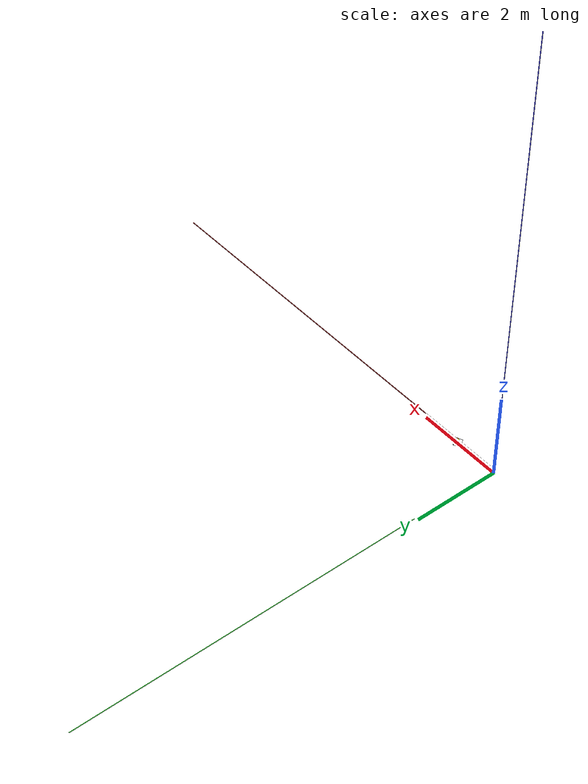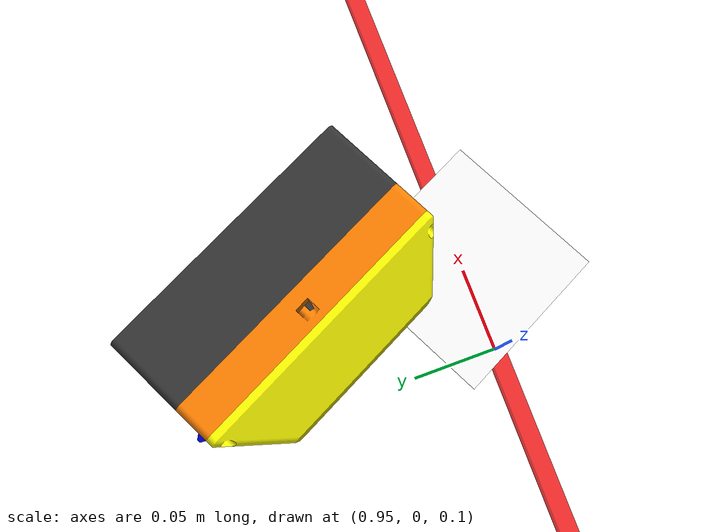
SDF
<sdf version="1.9">
 <world name="vtol_runway">
  <physics name="1ms" type="ignore">
   <max_step_size>0.001</max_step_size>
   <real_time_factor>1.0</real_time_factor>
  </physics>
  <plugin filename="gz-sim-physics-system" name="gz::sim::systems::Physics"/>
  <plugin filename="gz-sim-sensors-system" name="gz::sim::systems::Sensors">
   <render_engine>ogre2</render_engine>
  </plugin>
  <plugin filename="gz-sim-user-commands-system" name="gz::sim::systems::UserCommands"/>
  <plugin filename="gz-sim-scene-broadcaster-system" name="gz::sim::systems::SceneBroadcaster"/>
  <plugin filename="gz-sim-imu-system" name="gz::sim::systems::Imu"/>
  <plugin filename="gz-sim-navsat-system" name="gz::sim::systems::NavSat"/>
  <scene><ambient>1.0 1.0 1.0</ambient><background>0.8 0.8 0.8</background></scene>
  <spherical_coordinates>
   <latitude_deg>-35.363262</latitude_deg>
   <longitude_deg>149.165237</longitude_deg>
   <elevation>584</elevation>
   <heading_deg>0</heading_deg>
   <surface_model>EARTH_WGS84</surface_model>
  </spherical_coordinates>
  <light type="directional" name="sun">
   <pose>0 0 10 0 0 0</pose>
   <diffuse>0.8 0.8 0.8 1</diffuse>
   <specular>0.8 0.8 0.8 1</specular>
   <attenuation>
    <range>1000</range>
    <constant>0.9</constant>
    <linear>0.01</linear>
    <quadratic>0.001</quadratic>
   </attenuation>
   <direction>-0.5 0.1 -0.9</direction>
  </light>
  <model name="axes">
   <static>1</static>
   <link name="link">
    <visual name="r">
     <cast_shadows>0</cast_shadows>
     <pose>5 0 0.1 0 0 0</pose>
     <geometry><box><size>10 0.01 0.01</size></box></geometry>
     <material>
      <ambient>1 0 0 0.8</ambient>
      <diffuse>1 0 0 0.8</diffuse>
      <emissive>1 0 0 0.8</emissive>
      <specular>0.5 0.5 0.5 0.8</specular>
     </material>
    </visual>
    <visual name="g">
     <cast_shadows>0</cast_shadows>
     <pose>0 5 0.1 0 0 0</pose>
     <geometry><box><size>0.01 10 0.01</size></box></geometry>
     <material>
      <ambient>0 1 0 0.8</ambient>
      <diffuse>0 1 0 0.8</diffuse>
      <emissive>0 1 0 0.8</emissive>
      <specular>0.5 0.5 0.5 0.8</specular>
     </material>
    </visual>
    <visual name="b">
     <cast_shadows>0</cast_shadows>
     <pose>0 0 5.1 0 0 0</pose>
     <geometry><box><size>0.01 0.01 10</size></box></geometry>
     <material>
      <ambient>0 0 1 0.8</ambient>
      <diffuse>0 0 1 0.8</diffuse>
      <emissive>0 0 1 0.8</emissive>
      <specular>0.5 0.5 0.5 0.8</specular>
     </material>
    </visual>
    <sensor name="navsat_sensor" type="navsat"><always_on>1</always_on><update_rate>1</update_rate></sensor>
   </link>
  </model>
  <include><name>payload_target</name><uri>model://landing_payload</uri><pose>1 0 0.195 0 0 90</pose></include>
 </world>
</sdf>

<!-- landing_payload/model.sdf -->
<sdf version="1.9">
  <model name="landing_payload">
    <static>false</static>
    <link name="base_link">
      <pose>0 0 0 3.14159 0 0</pose>

      <inertial>
        <mass>2.5</mass>
        <inertia>
          <ixx>0.05</ixx><iyy>0.05</iyy><izz>0.05</izz>
        </inertia>
      </inertial>

      <collision name="simple_box_collision">
        <geometry>
          <box><size>0.2 0.2 0.15</size></box>
        </geometry>
      </collision>

      <visual name="box_visual">
        <geometry>
          <mesh>
            <uri>model://landing_payload/meshes/system - payload box-1.STL</uri>
            <scale>0.001 0.001 0.001</scale>
          </mesh>
        </geometry>
        <material>
          <ambient>1.0 0.5 0.0 1</ambient>
          <diffuse>1.0 0.5 0.0 1</diffuse>
        </material>
      </visual>

      <visual name="bottom_visual">
        <geometry>
          <mesh>
            <uri>model://landing_payload/meshes/system - Bottom-1.STL</uri>
            <scale>0.001 0.001 0.001</scale>
          </mesh>
        </geometry>
        <material>
          <ambient>0.2 0.2 0.2 1</ambient>
          <diffuse>0.2 0.2 0.2 1</diffuse>
        </material>
      </visual>

      <visual name="cone_visual">
        <geometry>
          <mesh>
            <uri>model://landing_payload/meshes/system - Cone Top-1.STL</uri>
            <scale>0.001 0.001 0.001</scale>
          </mesh>
        </geometry>
        <material>
          <ambient>1.0 1.0 0.0 1</ambient>
          <diffuse>1.0 1.0 0.0 1</diffuse>
        </material>
      </visual>

      <visual name="pins_visuall">
        <geometry>
          <mesh>
            <uri>model://landing_payload/meshes/system - Pin - Long-1.STL</uri>
            <scale>0.001 0.001 0.001</scale>
          </mesh>
        </geometry>
        <material>
          <ambient>0.0 0.0 1.0 1</ambient>
          <diffuse>0.0 0.0 1.0 1</diffuse>
        </material>
      </visual>
      <visual name="tag_surface">
        <pose>0 0 0.08 0 0 0</pose> <geometry>
          <plane>
            <normal>0 0 1</normal>
            <size>0.1 0.1</size> </plane>
        </geometry>
        <material>
          <ambient>1 1 1 1</ambient>
          <diffuse>1 1 1 1</diffuse>
        </material>
      </visual>
    </link>
  </model>
</sdf>
